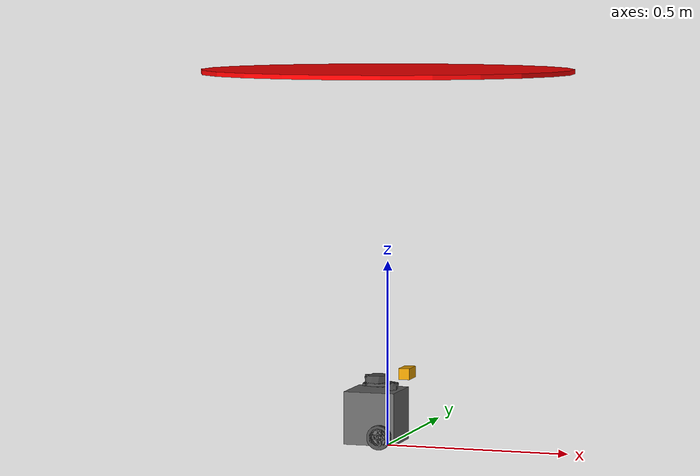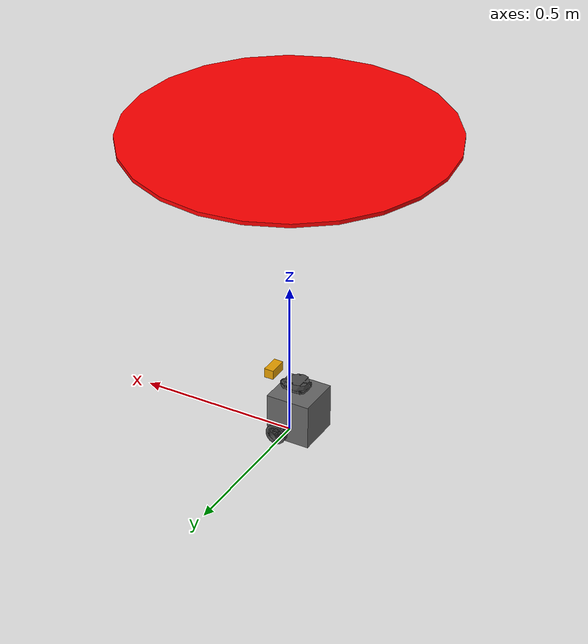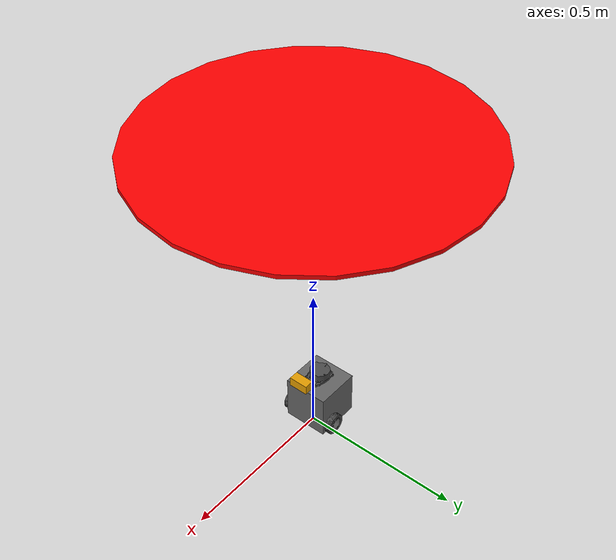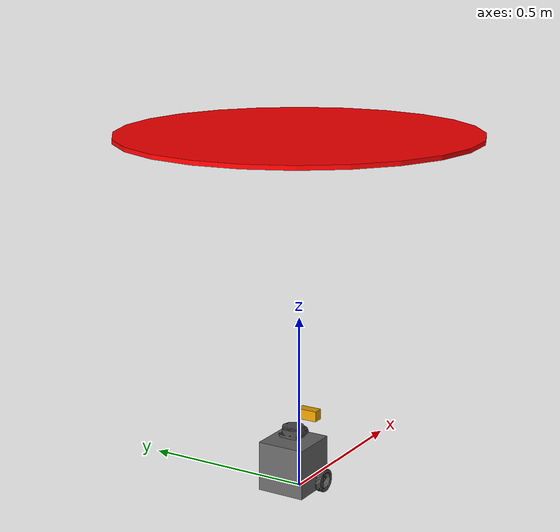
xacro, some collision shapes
<?xml version="1.0" ?>
<robot name="robot_rtk" xmlns:xacro="http://www.ros.org/wiki/xacro">

  <xacro:include filename="$(find turtlebot3_description)/urdf/turtlebot3_burger.urdf"/>

  <material name="rtk_marker_red">
    <color rgba="1.0 0.0 0.0 1.0"/>
  </material>
  <link name="rtk_marker_link">
    <visual>
      <origin xyz="0 0 1.0" rpy="0 0 0"/>
      <geometry>
        <cylinder length="0.012" radius="0.5"/>
      </geometry>
      <material name="rtk_marker_red"/>
    </visual>
  </link>
  <joint name="rtk_marker_joint" type="fixed">
    <parent link="base_link"/>
    <child link="rtk_marker_link"/>
  </joint>

  <!-- ============ 传感器安装（纯几何） ============ -->
  <joint name="camera_joint" type="fixed">
    <parent link="base_link"/>
    <child link="camera_link"/>
    <origin xyz="0.055 0 0.19" rpy="0 0 0"/>
  </joint>

  <link name="camera_link">
    <!-- 注意：URDF 的 box 是**属性**形式 size="x y z"（SDF 才是子元素形式）。
         写成 SDF 形式会让 URDF 解析报 "Box shape has no size attribute"，
         并连带后面的传感器定义一起出问题。 -->
    <visual>
      <geometry><box size="0.03 0.06 0.03"/></geometry>
    </visual>
  </link>

  <joint name="camera_optical_joint" type="fixed">
    <parent link="camera_link"/>
    <child link="camera_optical_frame"/>
    <origin xyz="0 0 0" rpy="-1.5707963 0 -1.5707963"/>
  </joint>
  <link name="camera_optical_frame"/>

  <joint name="rtk_scan_joint" type="fixed">
    <parent link="base_link"/>
    <child link="rtk_scan_link"/>
    <origin xyz="0 0 0.10" rpy="0 0 0"/>
  </joint>
  <link name="rtk_scan_link">
    <visual>
      <!-- URDF 的圆柱是 radius + **length**（SDF 才叫 height），写错会让 URDF 解析失败 -->
      <geometry><cylinder radius="0.03" length="0.03"/></geometry>
    </visual>
    <inertial>
      <mass value="0.05"/>
      <inertia ixx="1e-6" ixy="0" ixz="0" iyy="1e-6" iyz="0" izz="1e-6"/>
    </inertial>
  </link>

  <joint name="rtk_imu_joint" type="fixed">
    <parent link="base_link"/>
    <child link="rtk_imu_link"/>
    <origin xyz="0 0 0.05" rpy="0 0 0"/>
  </joint>
  <link name="rtk_imu_link">
    <visual>
      <geometry><box size="0.02 0.02 0.01"/></geometry>
    </visual>
    <inertial>
      <mass value="0.01"/>
      <inertia ixx="1e-6" ixy="0" ixz="0" iyy="1e-6" iyz="0" izz="1e-6"/>
    </inertial>
  </link>

  <joint name="gps_joint" type="fixed">
    <parent link="base_link"/>
    <child link="gps_link"/>
    <origin xyz="-0.03 0 0.12" rpy="0 0 0"/>
  </joint>
  <link name="gps_link">
    <visual>
      <geometry><box size="0.04 0.04 0.01"/></geometry>
    </visual>
    <inertial>
      <mass value="0.02"/>
      <inertia ixx="1e-6" ixy="0" ixz="0" iyy="1e-6" iyz="0" izz="1e-6"/>
    </inertial>
  </link>

  <!-- ============ 底盘插件 ============ -->
  <gazebo>
    <plugin filename="ignition-gazebo-diff-drive-system"
            name="ignition::gazebo::systems::DiffDrive">
      <left_joint>wheel_left_joint</left_joint>
      <right_joint>wheel_right_joint</right_joint>
      <wheel_separation>0.160</wheel_separation>
      <wheel_radius>0.033</wheel_radius>
      <max_linear_acceleration>0.5</max_linear_acceleration>
      <max_angular_acceleration>1.0</max_angular_acceleration>
      <topic>/cmd_vel</topic>
      <!-- 轮式里程计改到独立话题，且**不进 /tf**：odom->base 由局部 EKF 发布 -->
      <odom_topic>/wheel_odom_raw</odom_topic>
      <odom_publish_frequency>30</odom_publish_frequency>
      <tf_topic>/wheel_tf_diag</tf_topic>
      <frame_id>odom</frame_id>
      <child_frame_id>base_footprint</child_frame_id>
    </plugin>

    <plugin filename="ignition-gazebo-joint-state-publisher-system"
            name="ignition::gazebo::systems::JointStatePublisher">
      <topic>/joint_states</topic>
      <joint_name>wheel_left_joint</joint_name>
      <joint_name>wheel_right_joint</joint_name>
    </plugin>

    <!-- 仿真真值：**只给离线误差评估用**。不进 /tf（tf_topic 指向一个专用话题），
         定位/控制/代价地图任何一环都不得订阅它。 -->
    <plugin filename="ignition-gazebo-odometry-publisher-system"
            name="ignition::gazebo::systems::OdometryPublisher">
      <dimensions>2</dimensions>
      <odom_frame>world</odom_frame>
      <robot_base_frame>base_footprint</robot_base_frame>
      <odom_topic>/ground_truth/odom</odom_topic>
      <odom_publish_frequency>30</odom_publish_frequency>
      <tf_topic>/ground_truth_tf</tf_topic>
    </plugin>
  </gazebo>

  <!-- ============ 深度相机（只供代价地图） ============ -->
  <gazebo reference="camera_link">
    <sensor name="depth_camera" type="rgbd_camera">
      <topic>/rtk/camera</topic>
      <update_rate>10</update_rate>
      <always_on>1</always_on>
      <visualize>false</visualize>
      <camera>
        <horizontal_fov>1.0472</horizontal_fov>
        <image>
          <width>320</width>
          <height>240</height>
          <format>R8G8B8</format>
        </image>
        <clip>
          <near>0.05</near>
          <far>8.0</far>
        </clip>
        <noise>
          <type>gaussian</type>
          <mean>0.0</mean>
          <stddev>0.0</stddev>
        </noise>
      </camera>
    </sensor>
  </gazebo>

  <!-- ============ 低装 360° 激光雷达（第五阶段） ============ -->
  <gazebo reference="rtk_scan_link">
    <sensor name="near_lidar" type="gpu_lidar">
      <topic>/rtk/scan</topic>
      <update_rate>10</update_rate>
      <always_on>1</always_on>
      <visualize>false</visualize>
      <lidar>
        <scan>
          <horizontal>
            <samples>360</samples>
            <resolution>1</resolution>
            <min_angle>-3.14159265</min_angle>
            <max_angle>3.14159265</max_angle>
          </horizontal>
        </scan>
        <range>
          <!-- range_min 0.02 沿用阶段二；**range_max 8.0 是本传感器自己的值**
               （相机那套是 6.0，两者职责不同，不互相沿用） -->
          <min>0.02</min>
          <max>8.0</max>
          <resolution>0.01</resolution>
        </range>
        <noise>
          <type>gaussian</type>
          <mean>0.0</mean>
          <stddev>0.005</stddev>
        </noise>
      </lidar>
    </sensor>
  </gazebo>

  <!-- ============ IMU（航向来源） ============ -->
  <gazebo reference="rtk_imu_link">
    <sensor name="imu_sensor" type="imu">
      <topic>/rtk/imu</topic>
      <update_rate>50</update_rate>
      <always_on>1</always_on>
      <visualize>false</visualize>
      <imu>
        <angular_velocity>
          <x><noise type="gaussian"><mean>0.0</mean><stddev>2.0e-4</stddev></noise></x>
          <y><noise type="gaussian"><mean>0.0</mean><stddev>2.0e-4</stddev></noise></y>
          <z><noise type="gaussian"><mean>0.0</mean><stddev>2.0e-4</stddev></noise></z>
        </angular_velocity>
        <linear_acceleration>
          <x><noise type="gaussian"><mean>0.0</mean><stddev>1.7e-2</stddev></noise></x>
          <y><noise type="gaussian"><mean>0.0</mean><stddev>1.7e-2</stddev></noise></y>
          <z><noise type="gaussian"><mean>0.0</mean><stddev>1.7e-2</stddev></noise></z>
        </linear_acceleration>
      </imu>
    </sensor>
  </gazebo>

  <!-- ============ GPS（模拟 RTK 的原始来源，本身不加噪声） ============ -->
  <gazebo reference="gps_link">
    <sensor name="navsat_sensor" type="navsat">
      <topic>/rtk/navsat</topic>
      <update_rate>10</update_rate>
      <always_on>1</always_on>
      <visualize>false</visualize>
    </sensor>
  </gazebo>

</robot>

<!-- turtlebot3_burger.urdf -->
<!-- |    This document was autogenerated by xacro from /tmp/claude-0/-home-claude/8f5dd28e-fe63-5f45-8f7e-d1a0395364a9/scratchpad/repos/tb3/turtlebot3_description/urdf/turtlebot3_burger.urdf | -->
<!-- |    EDITING THIS FILE BY HAND IS NOT RECOMMENDED                                 | -->
<robot name="turtlebot3_burger">
  <!-- Init colour -->
  <material name="black">
    <color rgba="0.0 0.0 0.0 1.0"/>
  </material>
  <material name="dark">
    <color rgba="0.3 0.3 0.3 1.0"/>
  </material>
  <material name="light_black">
    <color rgba="0.4 0.4 0.4 1.0"/>
  </material>
  <material name="blue">
    <color rgba="0.0 0.0 0.8 1.0"/>
  </material>
  <material name="green">
    <color rgba="0.0 0.8 0.0 1.0"/>
  </material>
  <material name="grey">
    <color rgba="0.5 0.5 0.5 1.0"/>
  </material>
  <material name="orange">
    <color rgba="1.0 0.4235 0.0392 1.0"/>
  </material>
  <material name="brown">
    <color rgba="0.8706 0.8118 0.7647 1.0"/>
  </material>
  <material name="red">
    <color rgba="0.8 0.0 0.0 1.0"/>
  </material>
  <material name="white">
    <color rgba="1.0 1.0 1.0 1.0"/>
  </material>
  <link name="base_footprint"/>
  <joint name="base_joint" type="fixed">
    <parent link="base_footprint"/>
    <child link="base_link"/>
    <origin rpy="0 0 0" xyz="0.0 0.0 0.010"/>
  </joint>
  <link name="base_link">
    <visual>
      <origin rpy="0 0 0" xyz="-0.032 0 0.0"/>
      <geometry>
        <mesh filename="package://turtlebot3_description/meshes/bases/burger_base.stl" scale="0.001 0.001 0.001"/>
      </geometry>
      <material name="light_black"/>
    </visual>
    <collision>
      <origin rpy="0 0 0" xyz="-0.032 0 0.070"/>
      <geometry>
        <box size="0.140 0.140 0.143"/>
      </geometry>
    </collision>
    <inertial>
      <origin rpy="0 0 0" xyz="0 0 0"/>
      <mass value="8.2573504e-01"/>
      <inertia ixx="2.2124416e-03" ixy="-1.2294101e-05" ixz="3.4938785e-05" iyy="2.1193702e-03" iyz="-5.0120904e-06" izz="2.0064271e-03"/>
    </inertial>
  </link>
  <joint name="wheel_left_joint" type="continuous">
    <parent link="base_link"/>
    <child link="wheel_left_link"/>
    <origin rpy="-1.57 0 0" xyz="0.0 0.08 0.023"/>
    <axis xyz="0 0 1"/>
  </joint>
  <link name="wheel_left_link">
    <visual>
      <origin rpy="1.57 0 0" xyz="0 0 0"/>
      <geometry>
        <mesh filename="package://turtlebot3_description/meshes/wheels/left_tire.stl" scale="0.001 0.001 0.001"/>
      </geometry>
      <material name="dark"/>
    </visual>
    <collision>
      <origin rpy="0 0 0" xyz="0 0 0"/>
      <geometry>
        <cylinder length="0.018" radius="0.033"/>
      </geometry>
    </collision>
    <inertial>
      <origin xyz="0 0 0"/>
      <mass value="2.8498940e-02"/>
      <inertia ixx="1.1175580e-05" ixy="-4.2369783e-11" ixz="-5.9381719e-09" iyy="1.1192413e-05" iyz="-1.4400107e-11" izz="2.0712558e-05"/>
    </inertial>
  </link>
  <joint name="wheel_right_joint" type="continuous">
    <parent link="base_link"/>
    <child link="wheel_right_link"/>
    <origin rpy="-1.57 0 0" xyz="0.0 -0.080 0.023"/>
    <axis xyz="0 0 1"/>
  </joint>
  <link name="wheel_right_link">
    <visual>
      <origin rpy="1.57 0 0" xyz="0 0 0"/>
      <geometry>
        <mesh filename="package://turtlebot3_description/meshes/wheels/right_tire.stl" scale="0.001 0.001 0.001"/>
      </geometry>
      <material name="dark"/>
    </visual>
    <collision>
      <origin rpy="0 0 0" xyz="0 0 0"/>
      <geometry>
        <cylinder length="0.018" radius="0.033"/>
      </geometry>
    </collision>
    <inertial>
      <origin xyz="0 0 0"/>
      <mass value="2.8498940e-02"/>
      <inertia ixx="1.1175580e-05" ixy="-4.2369783e-11" ixz="-5.9381719e-09" iyy="1.1192413e-05" iyz="-1.4400107e-11" izz="2.0712558e-05"/>
    </inertial>
  </link>
  <joint name="caster_back_joint" type="fixed">
    <parent link="base_link"/>
    <child link="caster_back_link"/>
    <origin rpy="-1.57 0 0" xyz="-0.081 0 -0.004"/>
  </joint>
  <link name="caster_back_link">
    <collision>
      <origin rpy="0 0 0" xyz="0 0.001 0"/>
      <geometry>
        <box size="0.030 0.009 0.020"/>
      </geometry>
    </collision>
    <inertial>
      <origin xyz="0 0 0"/>
      <mass value="0.005"/>
      <inertia ixx="0.001" ixy="0.0" ixz="0.0" iyy="0.001" iyz="0.0" izz="0.001"/>
    </inertial>
  </link>
  <joint name="imu_joint" type="fixed">
    <parent link="base_link"/>
    <child link="imu_link"/>
    <origin rpy="0 0 0" xyz="-0.032 0 0.068"/>
  </joint>
  <link name="imu_link"/>
  <joint name="scan_joint" type="fixed">
    <parent link="base_link"/>
    <child link="base_scan"/>
    <origin rpy="0 0 0" xyz="-0.032 0 0.172"/>
  </joint>
  <link name="base_scan">
    <visual>
      <origin rpy="0 0 0" xyz="0 0 0.0"/>
      <geometry>
        <mesh filename="package://turtlebot3_description/meshes/sensors/lds.stl" scale="0.001 0.001 0.001"/>
      </geometry>
      <material name="dark"/>
    </visual>
    <collision>
      <origin rpy="0 0 0" xyz="0.015 0 -0.0065"/>
      <geometry>
        <cylinder length="0.0315" radius="0.055"/>
      </geometry>
    </collision>
    <inertial>
      <mass value="0.114"/>
      <origin xyz="0 0 0"/>
      <inertia ixx="0.001" ixy="0.0" ixz="0.0" iyy="0.001" iyz="0.0" izz="0.001"/>
    </inertial>
  </link>
</robot>
